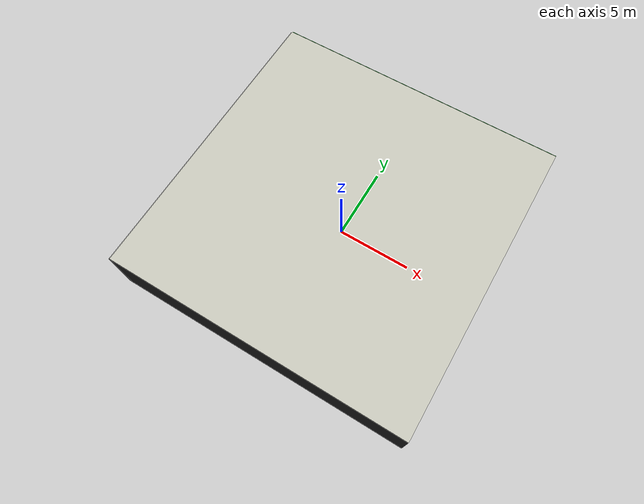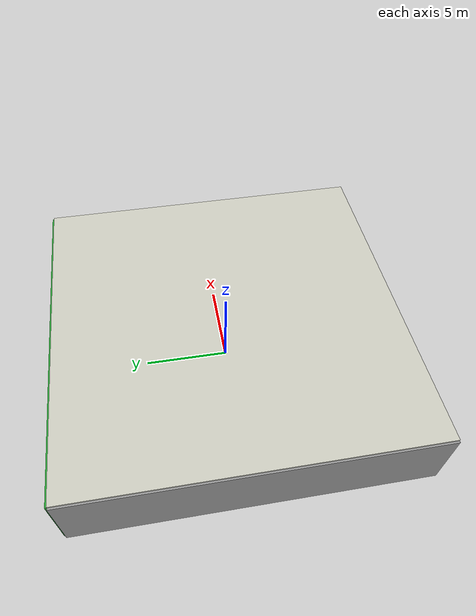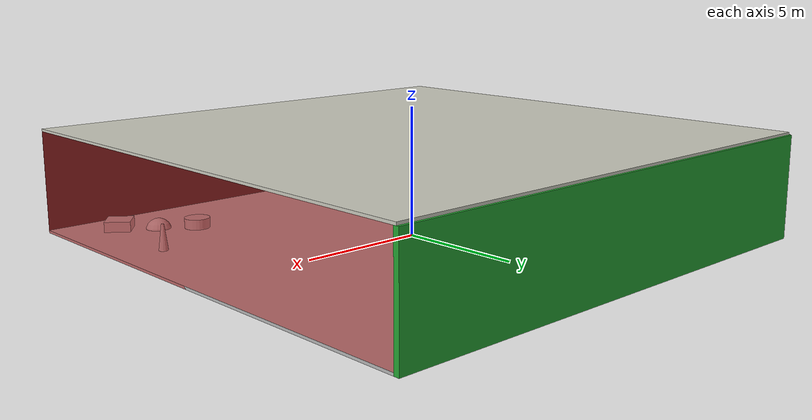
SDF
<sdf version="1.4">
 <world name="default">
  <physics type="ode">
   <max_step_size>0.001</max_step_size>
   <real_time_factor>1</real_time_factor>
   <real_time_update_rate>1000</real_time_update_rate>
   <gravity>0 0 -9.8</gravity>
  </physics>
  <scene><ambient>0.4 0.4 0.4 1</ambient><background>0.7 0.7 0.7 1</background><shadows>1</shadows></scene>
  <model name="Surrounding">
   <static>1</static>
   <link name="Ceiling">
    <collision name="Ceiling_Collision"><geometry><box><size>20 20 0.1</size></box></geometry></collision>
    <visual name="Ceiling_Visual">
     <geometry><box><size>20 20 0.1</size></box></geometry>
     <material>
      <script><uri>file://media/materials/scripts/gazebo.material</uri><name>Gazebo/PaintedWall</name></script>
     </material>
    </visual>
    <pose>0 0 4.05 0 0 0</pose>
   </link>
   <link name="Wall_South">
    <collision name="Wall_South_Collision">
     <geometry><box><size>20 0 4</size></box></geometry>
     <pose>0 0 2 0 -0 0</pose>
    </collision>
    <visual name="Wall_South_Visual">
     <pose>0 0 2 0 -0 0</pose>
     <geometry><box><size>20 0 4</size></box></geometry>
     <material>
      <script><uri>file://media/materials/scripts/gazebo.material</uri><name>Gazebo/FlatBlack</name></script>
     </material>
    </visual>
    <velocity_decay><linear>0</linear><angular>0</angular></velocity_decay>
    <pose>0 -10 0 0 -0 0</pose>
   </link>
   <link name="Wall_East">
    <collision name="Wall_21_Collision">
     <geometry><box><size>20 0 4</size></box></geometry>
     <pose>0 0 2 0 -0 0</pose>
    </collision>
    <visual name="Wall_21_Visual">
     <pose>0 0 2 0 -0 0</pose>
     <geometry><box><size>20 0 4</size></box></geometry>
     <material>
      <script><uri>file://media/materials/scripts/gazebo.material</uri><name>Gazebo/RedTransparent</name></script>
     </material>
    </visual>
    <velocity_decay><linear>0</linear><angular>0</angular></velocity_decay>
    <pose>10 0 0 0 -0 1.5708</pose>
   </link>
   <link name="Wall_North">
    <collision name="Wall_22_Collision">
     <geometry><box><size>20 0.2 4</size></box></geometry>
     <pose>0 0 2 0 -0 0</pose>
    </collision>
    <visual name="Wall_22_Visual">
     <pose>0 0 2 0 -0 0</pose>
     <geometry><box><size>20 0.2 4</size></box></geometry>
     <material>
      <script><uri>file://media/materials/scripts/gazebo.material</uri><name>Gazebo/GreenGlow</name></script>
     </material>
    </visual>
    <velocity_decay><linear>0</linear><angular>0</angular></velocity_decay>
    <pose>0 10 0 0 -0 0</pose>
   </link>
   <link name="Wall_West">
    <collision name="Wall_23_Collision">
     <geometry><box><size>20 0.2 4</size></box></geometry>
     <pose>0 0 2 0 -0 0</pose>
    </collision>
    <visual name="Wall_23_Visual">
     <pose>0 0 2 0 -0 0</pose>
     <geometry><box><size>20 0.2 4</size></box></geometry>
     <material>
      <script><uri>file://media/materials/scripts/gazebo.material</uri><name>Gazebo/GreyGradientSky</name></script>
     </material>
    </visual>
    <velocity_decay><linear>0</linear><angular>0</angular></velocity_decay>
    <pose>-10 0 0 0 0 -1.5708</pose>
   </link>
   <link name="Ground_link">
    <collision name="collision">
     <pose>0 0 .05 0 -0 0</pose>
     <geometry><box><size>20 20 0.1</size></box></geometry>
    </collision>
    <visual name="visual">
     <pose>0 0 .05 0 -0 0</pose>
     <geometry><box><size>20 20 0.1</size></box></geometry>
     <material>
      <script><uri>file://media/materials/scripts/gazebo.material</uri><name>Gazebo/CloudySky</name></script>
     </material>
    </visual>
   </link>
   <static>1</static>
  </model>
  <spherical_coordinates>
   <surface_model>EARTH_WGS84</surface_model>
   <latitude_deg>0</latitude_deg>
   <longitude_deg>0</longitude_deg>
   <elevation>0</elevation>
   <heading_deg>0</heading_deg>
  </spherical_coordinates>
  <light name="lightball_0" type="diffuse">
   <diffuse>0.8 0.8 0.8 1</diffuse>
   <specular>0.2 0.2 0.2 1</specular>
   <attenuation>
    <range>100</range>
    <constant>0.7</constant>
    <linear>0.01</linear>
    <quadratic>0.001</quadratic>
   </attenuation>
   <direction>-0.5 0.1 -0.9</direction>
   <pose>2.75024587427 -1.9046312298 0.891486841036 0 0 0</pose>
  </light>
  <light name="lightball_1" type="diffuse">
   <diffuse>0.8 0.8 0.8 1</diffuse>
   <specular>0.2 0.2 0.2 1</specular>
   <attenuation>
    <range>100</range>
    <constant>0.7</constant>
    <linear>0.01</linear>
    <quadratic>0.001</quadratic>
   </attenuation>
   <direction>-0.5 0.1 -0.9</direction>
   <pose>6.19193950763 -9.93290396572 0.606281017105 0 0 0</pose>
  </light>
  <light name="lightball_2" type="diffuse">
   <diffuse>0.8 0.8 0.8 1</diffuse>
   <specular>0.2 0.2 0.2 1</specular>
   <attenuation>
    <range>100</range>
    <constant>0.7</constant>
    <linear>0.01</linear>
    <quadratic>0.001</quadratic>
   </attenuation>
   <direction>-0.5 0.1 -0.9</direction>
   <pose>6.90755212978 1.19803077785 2.04413452422 0 0 0</pose>
  </light>
  <light name="lightball_3" type="diffuse">
   <diffuse>0.8 0.8 0.8 1</diffuse>
   <specular>0.2 0.2 0.2 1</specular>
   <attenuation>
    <range>100</range>
    <constant>0.7</constant>
    <linear>0.01</linear>
    <quadratic>0.001</quadratic>
   </attenuation>
   <direction>-0.5 0.1 -0.9</direction>
   <pose>-5.40009019966 6.41309159126 3.89745082768 0 0 0</pose>
  </light>
  <light name="lightball_4" type="diffuse">
   <diffuse>0.8 0.8 0.8 1</diffuse>
   <specular>0.2 0.2 0.2 1</specular>
   <attenuation>
    <range>100</range>
    <constant>0.7</constant>
    <linear>0.01</linear>
    <quadratic>0.001</quadratic>
   </attenuation>
   <direction>-0.5 0.1 -0.9</direction>
   <pose>7.67816008876 -8.51731453345 0.880936147167 0 0 0</pose>
  </light>
  <light name="lightball_5" type="diffuse">
   <diffuse>0.8 0.8 0.8 1</diffuse>
   <specular>0.2 0.2 0.2 1</specular>
   <attenuation>
    <range>100</range>
    <constant>0.7</constant>
    <linear>0.01</linear>
    <quadratic>0.001</quadratic>
   </attenuation>
   <direction>-0.5 0.1 -0.9</direction>
   <pose>-5.06840000547 -2.79892125672 2.0416812507 0 0 0</pose>
  </light>
  <light name="lightball_6" type="diffuse">
   <diffuse>0.8 0.8 0.8 1</diffuse>
   <specular>0.2 0.2 0.2 1</specular>
   <attenuation>
    <range>100</range>
    <constant>0.7</constant>
    <linear>0.01</linear>
    <quadratic>0.001</quadratic>
   </attenuation>
   <direction>-0.5 0.1 -0.9</direction>
   <pose>-4.55786064257 7.86200501224 1.19675173367 0 0 0</pose>
  </light>
  <light name="lightball_7" type="diffuse">
   <diffuse>0.8 0.8 0.8 1</diffuse>
   <specular>0.2 0.2 0.2 1</specular>
   <attenuation>
    <range>100</range>
    <constant>0.7</constant>
    <linear>0.01</linear>
    <quadratic>0.001</quadratic>
   </attenuation>
   <direction>-0.5 0.1 -0.9</direction>
   <pose>-0.933932219946 0.204832228568 0.78179687756 0 0 0</pose>
  </light>
  <light name="lightball_8" type="diffuse">
   <diffuse>0.8 0.8 0.8 1</diffuse>
   <specular>0.2 0.2 0.2 1</specular>
   <attenuation>
    <range>100</range>
    <constant>0.7</constant>
    <linear>0.01</linear>
    <quadratic>0.001</quadratic>
   </attenuation>
   <direction>-0.5 0.1 -0.9</direction>
   <pose>0.759688702222 1.54765732436 1.47782190442 0 0 0</pose>
  </light>
  <light name="lightball_9" type="diffuse">
   <diffuse>0.8 0.8 0.8 1</diffuse>
   <specular>0.2 0.2 0.2 1</specular>
   <attenuation>
    <range>100</range>
    <constant>0.7</constant>
    <linear>0.01</linear>
    <quadratic>0.001</quadratic>
   </attenuation>
   <direction>-0.5 0.1 -0.9</direction>
   <pose>3.83548442052 8.45953740584 2.07596821742 0 0 0</pose>
  </light>
  <include><uri>model://cabinet</uri><pose>-4.21585376836 0.835750667021 0 0 0 0.405327158341</pose></include>
  <include>
   <uri>model://textured_shapes</uri>
   <pose>6.71533840878 -7.38596752253 0 0 0 0.913530832346</pose>
  </include>
  <include>
   <uri>model://construction_cone</uri>
   <pose>8.24778758408 -4.40426653231 0 0 0 3.06925540467</pose>
  </include>
 </world>
</sdf>

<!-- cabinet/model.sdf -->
<sdf version="1.5">
  <model name="cabinet">
    <static>true</static>
    <link name="cabinet_bottom_plate">
      <inertial>
        <pose>0 0 -1 0 0 0</pose>
        <inertia>
          <ixx>2.050000</ixx>
          <ixy>0</ixy>
          <ixz>0</ixz>
          <iyy>2.050000</iyy>
          <iyz>0</iyz>
          <izz>2.050000</izz>
        </inertia>
        <mass>25.000000</mass>
      </inertial>
      <collision name="cabinet_bottom_plate_geom">
        <pose>0 0 0.010000 0 0 0</pose>
        <geometry>
          <box>
            <size>0.450000 0.450000 0.020000</size>
          </box>
        </geometry>
      </collision>
      <visual name="cabinet_bottom_plate_geom_visual">
        <pose>0 0 0.010000 0 0 0</pose>
        <geometry>
          <box>
            <size>0.450000 0.450000 0.020000</size>
          </box>
        </geometry>
        <material>
          <script>
            <uri>model://media/materials/scripts/gazebo.material</uri>
            <name>Gazebo/Wood</name>
          </script>
        </material>
      </visual>
      <collision name="cabinet_bottom_plate_geom_cabinet_back_plate">
        <pose>0.235000 0 0.510000 0 0 0</pose>
        <geometry>
          <box>
            <size>0.020000 0.450000 1.020000</size>
          </box>
        </geometry>
      </collision>
      <visual name="cabinet_bottom_plate_geom_cabinet_back_plate_visual">
        <pose>0.235000 0 0.510000 0 0 0</pose>
        <geometry>
          <box>
            <size>0.020000 0.450000 1.020000</size>
          </box>
        </geometry>
        <material>
          <script>
            <uri>model://media/materials/scripts/gazebo.material</uri>
            <name>Gazebo/Wood</name>
          </script>
        </material>
      </visual>
      <collision name="cabinet_bottom_plate_geom_cabinet_left_plate">
        <pose>0 0.235000 0.510000 0 0 0</pose>
        <geometry>
          <box>
            <size>0.450000 0.020000 1.020000</size>
          </box>
        </geometry>
      </collision>
      <visual name="cabinet_bottom_plate_geom_cabinet_left_plate_visual">
        <pose>0 0.235000 0.510000 0 0 0</pose>
        <geometry>
          <box>
            <size>0.450000 0.020000 1.020000</size>
          </box>
        </geometry>
        <material>
          <script>
            <uri>model://media/materials/scripts/gazebo.material</uri>
            <name>Gazebo/Wood</name>
          </script>
        </material>
      </visual>
      <collision name="cabinet_bottom_plate_geom_cabinet_middle_plate">
        <pose>0 0 0.510000 0 0 0</pose>
        <geometry>
          <box>
            <size>0.450000 0.450000 0.020000</size>
          </box>
        </geometry>
      </collision>
      <visual name="cabinet_bottom_plate_geom_cabinet_middle_plate_visual">
        <pose>0 0 0.510000 0 0 0</pose>
        <geometry>
          <box>
            <size>0.450000 0.450000 0.020000</size>
          </box>
        </geometry>
        <material>
          <script>
            <uri>model://media/materials/scripts/gazebo.material</uri>
            <name>Gazebo/Wood</name>
          </script>
        </material>
      </visual>
      <collision name="cabinet_bottom_plate_geom_cabinet_right_plate">
        <pose>0 -0.235000 0.510000 0 0 0</pose>
        <geometry>
          <box>
            <size>0.450000 0.020000 1.020000</size>
          </box>
        </geometry>
      </collision>
      <visual name="cabinet_bottom_plate_geom_cabinet_right_plate_visual">
        <pose>0 -0.235000 0.510000 0 0 0</pose>
        <geometry>
          <box>
            <size>0.450000 0.020000 1.020000</size>
          </box>
        </geometry>
        <material>
          <script>
            <uri>model://media/materials/scripts/gazebo.material</uri>
            <name>Gazebo/Wood</name>
          </script>
        </material>
      </visual>
      <collision name="cabinet_bottom_plate_geom_cabinet_top_plate">
        <pose>0 0 1.010000 0 0 0</pose>
        <geometry>
          <box>
            <size>0.450000 0.450000 0.020000</size>
          </box>
        </geometry>
      </collision>
      <visual name="cabinet_bottom_plate_geom_cabinet_top_plate_visual">
        <pose>0 0 1.010000 0 0 0</pose>
        <geometry>
          <box>
            <size>0.450000 0.450000 0.020000</size>
          </box>
        </geometry>
        <material>
          <script>
            <uri>model://media/materials/scripts/gazebo.material</uri>
            <name>Gazebo/Wood</name>
          </script>
        </material>
      </visual>
    </link>
  </model>
</sdf>

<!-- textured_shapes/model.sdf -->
<sdf version="1.6">
  <model name="textured_shapes">
    <pose>0 0 0.5 0 0 0</pose>
    <link name="box">
      <pose>0 -1.5 0 0 0 0</pose>
      <collision name="collision">
        <geometry>
          <box>
            <size>1 1 1</size>
          </box>
        </geometry>
      </collision>
      <visual name="visual">
        <geometry>
          <box>
            <size>1 1 1</size>
          </box>
        </geometry>
        <material>
          <script>
            <uri>model://../model_source/models/textured_shapes/materials/scripts</uri>
            <uri>model://../model_source/models/textured_shapes/materials/textures</uri>
            <name>TexturedShape/Squares</name>
          </script>
        </material>
      </visual>
    </link>
    <link name="sphere">
      <collision name="collision">
        <geometry>
          <sphere>
            <radius>0.5</radius>
          </sphere>
        </geometry>
      </collision>
      <visual name="visual">
        <geometry>
          <sphere>
            <radius>0.5</radius>
          </sphere>
        </geometry>
        <material>
          <script>
            <uri>model://../model_source/models/textured_shapes/materials/scripts</uri>
            <uri>model://../model_source/models/textured_shapes/materials/textures</uri>
            <name>TexturedShape/Squares</name>
          </script>
        </material>
      </visual>
    </link>
    <link name="cylinder">
      <pose>0 1.5 0 0 0 0</pose>
      <collision name="collision">
        <geometry>
          <cylinder>
            <radius>0.5</radius>
            <length>1</length>
          </cylinder>
        </geometry>
      </collision>
      <visual name="visual">
        <geometry>
          <cylinder>
            <radius>0.5</radius>
            <length>1</length>
          </cylinder>
        </geometry>
        <material>
          <script>
            <uri>model://../model_source/models/textured_shapes/materials/scripts</uri>
            <uri>model://../model_source/models/textured_shapes/materials/textures</uri>
            <name>TexturedShape/Squares</name>
          </script>
        </material>
      </visual>
    </link>
  </model>
</sdf>

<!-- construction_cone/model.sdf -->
<sdf version="1.5">
  <model name="Construction Cone">
    <link name="link">
      <collision name="collision">
        <geometry>
          <mesh>
            <scale>10 10 10</scale>
            <uri>file://isr-testbed/construction_cone/meshes/construction_cone.dae</uri>
          </mesh>
        </geometry>
      </collision>
      <visual name="visual">
        <geometry>
          <mesh>
            <scale>10 10 10</scale>
            <uri>file://isr-testbed/construction_cone/meshes/construction_cone.dae</uri>
          </mesh>
        </geometry>
      </visual>
    </link>
  </model>
</sdf>
